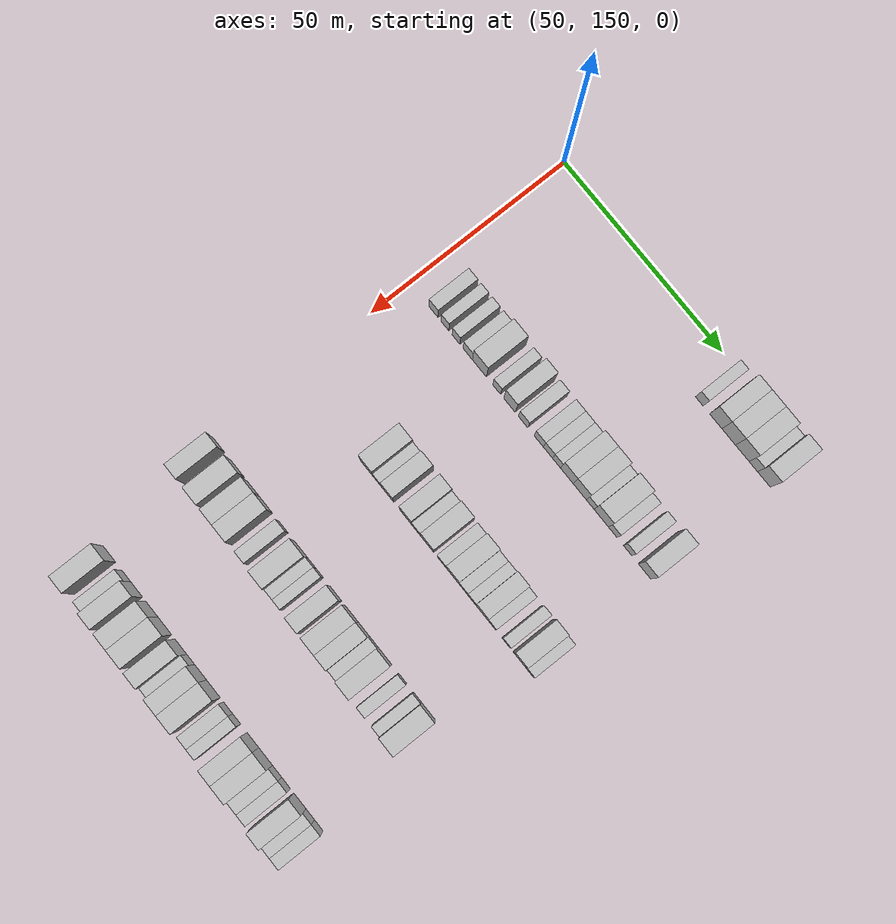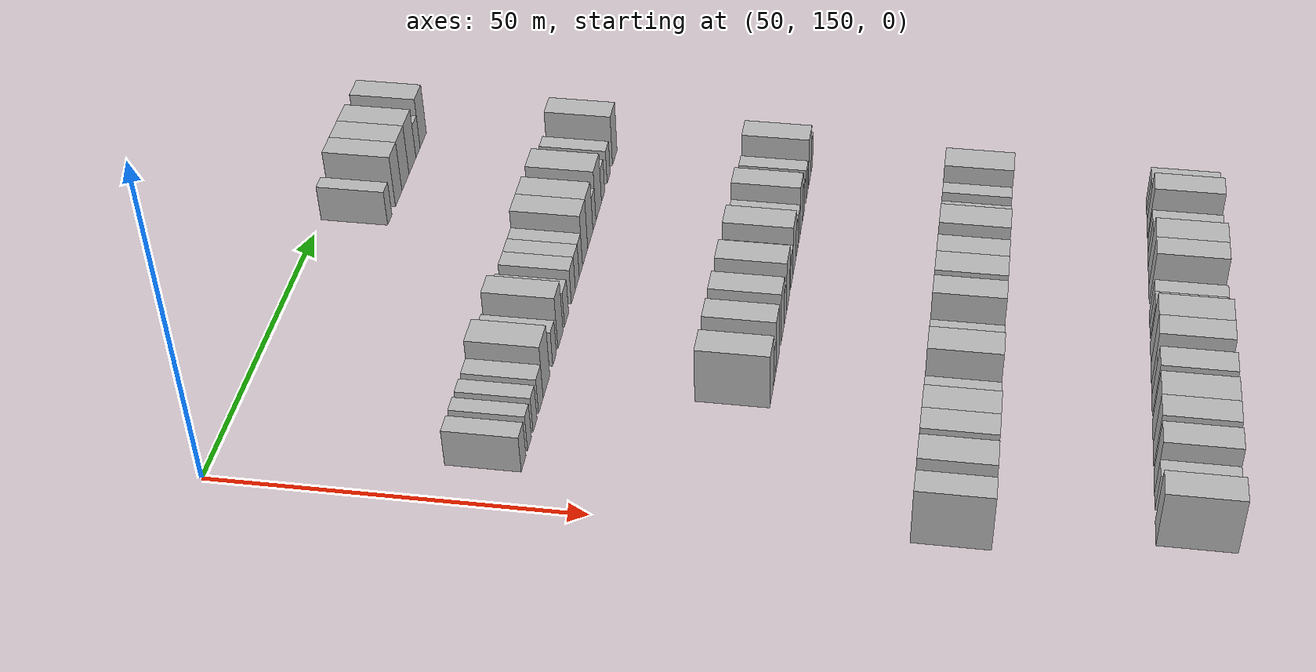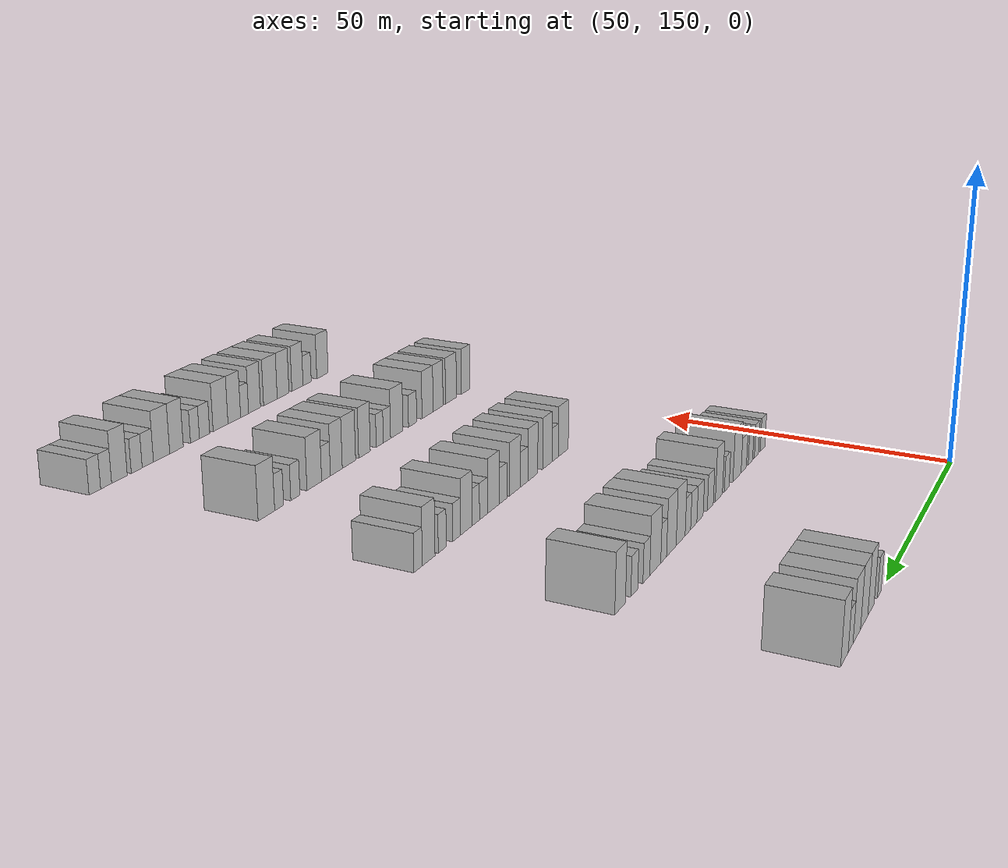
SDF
<sdf version="1.6">
 <world name="default">
  <model name="building_392">
   <static>1</static>
   <pose>55.0000 204.8235 0 0.000000 0.000000 0.000000</pose>
   <link name="link">
    <pose>0 0 3.00 0 0 0</pose>
    <collision name="collision"><geometry><box><size>10.0000 2.4169 6.0000</size></box></geometry></collision>
    <visual name="visual">
     <cast_shadows>0</cast_shadows>
     <geometry><box><size>10.0000 2.4169 6.0000</size></box></geometry>
     <material>
      <script>
       <uri>model://HANNAS_wall/materials/scripts</uri>
       <uri>model://HANNAS_wall/materials/textures</uri>
       <name>vrc/HANNAS_wall</name>
      </script>
     </material>
    </visual>
   </link>
  </model>
  <model name="building_393">
   <static>1</static>
   <pose>55.0000 209.9333 0 0.000000 0.000000 0.000000</pose>
   <link name="link">
    <pose>0 0 4.50 0 0 0</pose>
    <collision name="collision"><geometry><box><size>10.0000 3.8027 9.0000</size></box></geometry></collision>
    <visual name="visual">
     <cast_shadows>0</cast_shadows>
     <geometry><box><size>10.0000 3.8027 9.0000</size></box></geometry>
     <material>
      <script>
       <uri>model://HANNAS_wall/materials/scripts</uri>
       <uri>model://HANNAS_wall/materials/textures</uri>
       <name>vrc/HANNAS_wall</name>
      </script>
     </material>
    </visual>
   </link>
  </model>
  <model name="building_394">
   <static>1</static>
   <pose>55.0000 213.9216 0 0.000000 0.000000 0.000000</pose>
   <link name="link">
    <pose>0 0 4.50 0 0 0</pose>
    <collision name="collision"><geometry><box><size>10.0000 4.1739 9.0000</size></box></geometry></collision>
    <visual name="visual">
     <cast_shadows>0</cast_shadows>
     <geometry><box><size>10.0000 4.1739 9.0000</size></box></geometry>
     <material>
      <script>
       <uri>model://HANNAS_wall/materials/scripts</uri>
       <uri>model://HANNAS_wall/materials/textures</uri>
       <name>vrc/HANNAS_wall</name>
      </script>
     </material>
    </visual>
   </link>
  </model>
  <model name="building_395">
   <static>1</static>
   <pose>55.0000 218.1036 0 0.000000 0.000000 0.000000</pose>
   <link name="link">
    <pose>0 0 4.50 0 0 0</pose>
    <collision name="collision"><geometry><box><size>10.0000 4.1902 9.0000</size></box></geometry></collision>
    <visual name="visual">
     <cast_shadows>0</cast_shadows>
     <geometry><box><size>10.0000 4.1902 9.0000</size></box></geometry>
     <material>
      <script>
       <uri>model://HANNAS_wall/materials/scripts</uri>
       <uri>model://HANNAS_wall/materials/textures</uri>
       <name>vrc/HANNAS_wall</name>
      </script>
     </material>
    </visual>
   </link>
  </model>
  <model name="building_396">
   <static>1</static>
   <pose>55.0000 221.4926 0 0.000000 0.000000 0.000000</pose>
   <link name="link">
    <pose>0 0 3.00 0 0 0</pose>
    <collision name="collision"><geometry><box><size>10.0000 2.5878 6.0000</size></box></geometry></collision>
    <visual name="visual">
     <cast_shadows>0</cast_shadows>
     <geometry><box><size>10.0000 2.5878 6.0000</size></box></geometry>
     <material>
      <script>
       <uri>model://HANNAS_wall/materials/scripts</uri>
       <uri>model://HANNAS_wall/materials/textures</uri>
       <name>vrc/HANNAS_wall</name>
      </script>
     </material>
    </visual>
   </link>
  </model>
  <model name="building_397">
   <static>1</static>
   <pose>55.0000 224.7605 0 0.000000 0.000000 0.000000</pose>
   <link name="link">
    <pose>0 0 4.50 0 0 0</pose>
    <collision name="collision"><geometry><box><size>10.0000 3.9481 9.0000</size></box></geometry></collision>
    <visual name="visual">
     <cast_shadows>0</cast_shadows>
     <geometry><box><size>10.0000 3.9481 9.0000</size></box></geometry>
     <material>
      <script>
       <uri>model://HANNAS_wall/materials/scripts</uri>
       <uri>model://HANNAS_wall/materials/textures</uri>
       <name>vrc/HANNAS_wall</name>
      </script>
     </material>
    </visual>
   </link>
  </model>
  <model name="building_618">
   <static>1</static>
   <pose>85.0000 157.7342 0 0.000000 0.000000 0.000000</pose>
   <link name="link">
    <pose>0 0 3.00 0 0 0</pose>
    <collision name="collision"><geometry><box><size>10.0000 2.8716 6.0000</size></box></geometry></collision>
    <visual name="visual">
     <cast_shadows>0</cast_shadows>
     <geometry><box><size>10.0000 2.8716 6.0000</size></box></geometry>
     <material>
      <script>
       <uri>model://HANNAS_wall/materials/scripts</uri>
       <uri>model://HANNAS_wall/materials/textures</uri>
       <name>vrc/HANNAS_wall</name>
      </script>
     </material>
    </visual>
   </link>
  </model>
  <model name="building_619">
   <static>1</static>
   <pose>85.0000 161.3915 0 0.000000 0.000000 0.000000</pose>
   <link name="link">
    <pose>0 0 3.00 0 0 0</pose>
    <collision name="collision"><geometry><box><size>10.0000 2.4431 6.0000</size></box></geometry></collision>
    <visual name="visual">
     <cast_shadows>0</cast_shadows>
     <geometry><box><size>10.0000 2.4431 6.0000</size></box></geometry>
     <material>
      <script>
       <uri>model://HANNAS_wall/materials/scripts</uri>
       <uri>model://HANNAS_wall/materials/textures</uri>
       <name>vrc/HANNAS_wall</name>
      </script>
     </material>
    </visual>
   </link>
  </model>
  <model name="building_620">
   <static>1</static>
   <pose>85.0000 164.8804 0 0.000000 0.000000 0.000000</pose>
   <link name="link">
    <pose>0 0 3.00 0 0 0</pose>
    <collision name="collision"><geometry><box><size>10.0000 2.5348 6.0000</size></box></geometry></collision>
    <visual name="visual">
     <cast_shadows>0</cast_shadows>
     <geometry><box><size>10.0000 2.5348 6.0000</size></box></geometry>
     <material>
      <script>
       <uri>model://HANNAS_wall/materials/scripts</uri>
       <uri>model://HANNAS_wall/materials/textures</uri>
       <name>vrc/HANNAS_wall</name>
      </script>
     </material>
    </visual>
   </link>
  </model>
  <model name="building_621">
   <static>1</static>
   <pose>85.0000 168.6469 0 0.000000 0.000000 0.000000</pose>
   <link name="link">
    <pose>0 0 3.00 0 0 0</pose>
    <collision name="collision"><geometry><box><size>10.0000 2.9982 6.0000</size></box></geometry></collision>
    <visual name="visual">
     <cast_shadows>0</cast_shadows>
     <geometry><box><size>10.0000 2.9982 6.0000</size></box></geometry>
     <material>
      <script>
       <uri>model://HANNAS_wall/materials/scripts</uri>
       <uri>model://HANNAS_wall/materials/textures</uri>
       <name>vrc/HANNAS_wall</name>
      </script>
     </material>
    </visual>
   </link>
  </model>
  <model name="building_622">
   <static>1</static>
   <pose>85.0000 172.3509 0 0.000000 0.000000 0.000000</pose>
   <link name="link">
    <pose>0 0 4.50 0 0 0</pose>
    <collision name="collision"><geometry><box><size>10.0000 4.4097 9.0000</size></box></geometry></collision>
    <visual name="visual">
     <cast_shadows>0</cast_shadows>
     <geometry><box><size>10.0000 4.4097 9.0000</size></box></geometry>
     <material>
      <script>
       <uri>model://HANNAS_wall/materials/scripts</uri>
       <uri>model://HANNAS_wall/materials/textures</uri>
       <name>vrc/HANNAS_wall</name>
      </script>
     </material>
    </visual>
   </link>
  </model>
  <model name="building_623">
   <static>1</static>
   <pose>85.0000 177.8034 0 0.000000 0.000000 0.000000</pose>
   <link name="link">
    <pose>0 0 3.00 0 0 0</pose>
    <collision name="collision"><geometry><box><size>10.0000 2.4953 6.0000</size></box></geometry></collision>
    <visual name="visual">
     <cast_shadows>0</cast_shadows>
     <geometry><box><size>10.0000 2.4953 6.0000</size></box></geometry>
     <material>
      <script>
       <uri>model://HANNAS_wall/materials/scripts</uri>
       <uri>model://HANNAS_wall/materials/textures</uri>
       <name>vrc/HANNAS_wall</name>
      </script>
     </material>
    </visual>
   </link>
  </model>
  <model name="building_624">
   <static>1</static>
   <pose>85.0000 181.8624 0 0.000000 0.000000 0.000000</pose>
   <link name="link">
    <pose>0 0 4.50 0 0 0</pose>
    <collision name="collision"><geometry><box><size>10.0000 3.6227 9.0000</size></box></geometry></collision>
    <visual name="visual">
     <cast_shadows>0</cast_shadows>
     <geometry><box><size>10.0000 3.6227 9.0000</size></box></geometry>
     <material>
      <script>
       <uri>model://HANNAS_wall/materials/scripts</uri>
       <uri>model://HANNAS_wall/materials/textures</uri>
       <name>vrc/HANNAS_wall</name>
      </script>
     </material>
    </visual>
   </link>
  </model>
  <model name="building_625">
   <static>1</static>
   <pose>85.0000 186.1499 0 0.000000 0.000000 0.000000</pose>
   <link name="link">
    <pose>0 0 3.00 0 0 0</pose>
    <collision name="collision"><geometry><box><size>10.0000 2.9523 6.0000</size></box></geometry></collision>
    <visual name="visual">
     <cast_shadows>0</cast_shadows>
     <geometry><box><size>10.0000 2.9523 6.0000</size></box></geometry>
     <material>
      <script>
       <uri>model://HANNAS_wall/materials/scripts</uri>
       <uri>model://HANNAS_wall/materials/textures</uri>
       <name>vrc/HANNAS_wall</name>
      </script>
     </material>
    </visual>
   </link>
  </model>
  <model name="building_626">
   <static>1</static>
   <pose>85.0000 191.1034 0 0.000000 0.000000 0.000000</pose>
   <link name="link">
    <pose>0 0 3.00 0 0 0</pose>
    <collision name="collision"><geometry><box><size>10.0000 2.9547 6.0000</size></box></geometry></collision>
    <visual name="visual">
     <cast_shadows>0</cast_shadows>
     <geometry><box><size>10.0000 2.9547 6.0000</size></box></geometry>
     <material>
      <script>
       <uri>model://HANNAS_wall/materials/scripts</uri>
       <uri>model://HANNAS_wall/materials/textures</uri>
       <name>vrc/HANNAS_wall</name>
      </script>
     </material>
    </visual>
   </link>
  </model>
  <model name="building_627">
   <static>1</static>
   <pose>85.0000 194.0192 0 0.000000 0.000000 0.000000</pose>
   <link name="link">
    <pose>0 0 3.00 0 0 0</pose>
    <collision name="collision"><geometry><box><size>10.0000 2.8770 6.0000</size></box></geometry></collision>
    <visual name="visual">
     <cast_shadows>0</cast_shadows>
     <geometry><box><size>10.0000 2.8770 6.0000</size></box></geometry>
     <material>
      <script>
       <uri>model://HANNAS_wall/materials/scripts</uri>
       <uri>model://HANNAS_wall/materials/textures</uri>
       <name>vrc/HANNAS_wall</name>
      </script>
     </material>
    </visual>
   </link>
  </model>
  <model name="building_628">
   <static>1</static>
   <pose>85.0000 196.7021 0 0.000000 0.000000 0.000000</pose>
   <link name="link">
    <pose>0 0 3.00 0 0 0</pose>
    <collision name="collision"><geometry><box><size>10.0000 2.4886 6.0000</size></box></geometry></collision>
    <visual name="visual">
     <cast_shadows>0</cast_shadows>
     <geometry><box><size>10.0000 2.4886 6.0000</size></box></geometry>
     <material>
      <script>
       <uri>model://HANNAS_wall/materials/scripts</uri>
       <uri>model://HANNAS_wall/materials/textures</uri>
       <name>vrc/HANNAS_wall</name>
      </script>
     </material>
    </visual>
   </link>
  </model>
  <model name="building_629">
   <static>1</static>
   <pose>85.0000 199.9274 0 0.000000 0.000000 0.000000</pose>
   <link name="link">
    <pose>0 0 4.50 0 0 0</pose>
    <collision name="collision"><geometry><box><size>10.0000 3.9621 9.0000</size></box></geometry></collision>
    <visual name="visual">
     <cast_shadows>0</cast_shadows>
     <geometry><box><size>10.0000 3.9621 9.0000</size></box></geometry>
     <material>
      <script>
       <uri>model://HANNAS_wall/materials/scripts</uri>
       <uri>model://HANNAS_wall/materials/textures</uri>
       <name>vrc/HANNAS_wall</name>
      </script>
     </material>
    </visual>
   </link>
  </model>
  <model name="building_630">
   <static>1</static>
   <pose>85.0000 203.9580 0 0.000000 0.000000 0.000000</pose>
   <link name="link">
    <pose>0 0 4.50 0 0 0</pose>
    <collision name="collision"><geometry><box><size>10.0000 4.0991 9.0000</size></box></geometry></collision>
    <visual name="visual">
     <cast_shadows>0</cast_shadows>
     <geometry><box><size>10.0000 4.0991 9.0000</size></box></geometry>
     <material>
      <script>
       <uri>model://HANNAS_wall/materials/scripts</uri>
       <uri>model://HANNAS_wall/materials/textures</uri>
       <name>vrc/HANNAS_wall</name>
      </script>
     </material>
    </visual>
   </link>
  </model>
  <model name="building_631">
   <static>1</static>
   <pose>85.0000 207.2104 0 0.000000 0.000000 0.000000</pose>
   <link name="link">
    <pose>0 0 3.00 0 0 0</pose>
    <collision name="collision"><geometry><box><size>10.0000 2.4057 6.0000</size></box></geometry></collision>
    <visual name="visual">
     <cast_shadows>0</cast_shadows>
     <geometry><box><size>10.0000 2.4057 6.0000</size></box></geometry>
     <material>
      <script>
       <uri>model://HANNAS_wall/materials/scripts</uri>
       <uri>model://HANNAS_wall/materials/textures</uri>
       <name>vrc/HANNAS_wall</name>
      </script>
     </material>
    </visual>
   </link>
  </model>
  <model name="building_632">
   <static>1</static>
   <pose>85.0000 210.6419 0 0.000000 0.000000 0.000000</pose>
   <link name="link">
    <pose>0 0 4.50 0 0 0</pose>
    <collision name="collision"><geometry><box><size>10.0000 4.4574 9.0000</size></box></geometry></collision>
    <visual name="visual">
     <cast_shadows>0</cast_shadows>
     <geometry><box><size>10.0000 4.4574 9.0000</size></box></geometry>
     <material>
      <script>
       <uri>model://HANNAS_wall/materials/scripts</uri>
       <uri>model://HANNAS_wall/materials/textures</uri>
       <name>vrc/HANNAS_wall</name>
      </script>
     </material>
    </visual>
   </link>
  </model>
  <model name="building_633">
   <static>1</static>
   <pose>85.0000 214.1999 0 0.000000 0.000000 0.000000</pose>
   <link name="link">
    <pose>0 0 3.00 0 0 0</pose>
    <collision name="collision"><geometry><box><size>10.0000 2.6586 6.0000</size></box></geometry></collision>
    <visual name="visual">
     <cast_shadows>0</cast_shadows>
     <geometry><box><size>10.0000 2.6586 6.0000</size></box></geometry>
     <material>
      <script>
       <uri>model://HANNAS_wall/materials/scripts</uri>
       <uri>model://HANNAS_wall/materials/textures</uri>
       <name>vrc/HANNAS_wall</name>
      </script>
     </material>
    </visual>
   </link>
  </model>
  <model name="building_634">
   <static>1</static>
   <pose>85.0000 218.8183 0 0.000000 0.000000 0.000000</pose>
   <link name="link">
    <pose>0 0 3.00 0 0 0</pose>
    <collision name="collision"><geometry><box><size>10.0000 2.5783 6.0000</size></box></geometry></collision>
    <visual name="visual">
     <cast_shadows>0</cast_shadows>
     <geometry><box><size>10.0000 2.5783 6.0000</size></box></geometry>
     <material>
      <script>
       <uri>model://HANNAS_wall/materials/scripts</uri>
       <uri>model://HANNAS_wall/materials/textures</uri>
       <name>vrc/HANNAS_wall</name>
      </script>
     </material>
    </visual>
   </link>
  </model>
  <model name="building_635">
   <static>1</static>
   <pose>85.0000 224.0314 0 0.000000 0.000000 0.000000</pose>
   <link name="link">
    <pose>0 0 4.50 0 0 0</pose>
    <collision name="collision"><geometry><box><size>10.0000 3.8479 9.0000</size></box></geometry></collision>
    <visual name="visual">
     <cast_shadows>0</cast_shadows>
     <geometry><box><size>10.0000 3.8479 9.0000</size></box></geometry>
     <material>
      <script>
       <uri>model://HANNAS_wall/materials/scripts</uri>
       <uri>model://HANNAS_wall/materials/textures</uri>
       <name>vrc/HANNAS_wall</name>
      </script>
     </material>
    </visual>
   </link>
  </model>
  <model name="building_844">
   <static>1</static>
   <pose>115.0000 174.2689 0 0.000000 0.000000 0.000000</pose>
   <link name="link">
    <pose>0 0 4.50 0 0 0</pose>
    <collision name="collision"><geometry><box><size>10.0000 4.1962 9.0000</size></box></geometry></collision>
    <visual name="visual">
     <cast_shadows>0</cast_shadows>
     <geometry><box><size>10.0000 4.1962 9.0000</size></box></geometry>
     <material>
      <script>
       <uri>model://HANNAS_wall/materials/scripts</uri>
       <uri>model://HANNAS_wall/materials/textures</uri>
       <name>vrc/HANNAS_wall</name>
      </script>
     </material>
    </visual>
   </link>
  </model>
  <model name="building_845">
   <static>1</static>
   <pose>115.0000 177.6730 0 0.000000 0.000000 0.000000</pose>
   <link name="link">
    <pose>0 0 3.00 0 0 0</pose>
    <collision name="collision"><geometry><box><size>10.0000 2.6120 6.0000</size></box></geometry></collision>
    <visual name="visual">
     <cast_shadows>0</cast_shadows>
     <geometry><box><size>10.0000 2.6120 6.0000</size></box></geometry>
     <material>
      <script>
       <uri>model://HANNAS_wall/materials/scripts</uri>
       <uri>model://HANNAS_wall/materials/textures</uri>
       <name>vrc/HANNAS_wall</name>
      </script>
     </material>
    </visual>
   </link>
  </model>
  <model name="building_846">
   <static>1</static>
   <pose>115.0000 180.8506 0 0.000000 0.000000 0.000000</pose>
   <link name="link">
    <pose>0 0 4.50 0 0 0</pose>
    <collision name="collision"><geometry><box><size>10.0000 3.7434 9.0000</size></box></geometry></collision>
    <visual name="visual">
     <cast_shadows>0</cast_shadows>
     <geometry><box><size>10.0000 3.7434 9.0000</size></box></geometry>
     <material>
      <script>
       <uri>model://HANNAS_wall/materials/scripts</uri>
       <uri>model://HANNAS_wall/materials/textures</uri>
       <name>vrc/HANNAS_wall</name>
      </script>
     </material>
    </visual>
   </link>
  </model>
  <model name="building_847">
   <static>1</static>
   <pose>115.0000 186.6078 0 0.000000 0.000000 0.000000</pose>
   <link name="link">
    <pose>0 0 4.50 0 0 0</pose>
    <collision name="collision"><geometry><box><size>10.0000 3.7710 9.0000</size></box></geometry></collision>
    <visual name="visual">
     <cast_shadows>0</cast_shadows>
     <geometry><box><size>10.0000 3.7710 9.0000</size></box></geometry>
     <material>
      <script>
       <uri>model://HANNAS_wall/materials/scripts</uri>
       <uri>model://HANNAS_wall/materials/textures</uri>
       <name>vrc/HANNAS_wall</name>
      </script>
     </material>
    </visual>
   </link>
  </model>
  <model name="building_848">
   <static>1</static>
   <pose>115.0000 189.8974 0 0.000000 0.000000 0.000000</pose>
   <link name="link">
    <pose>0 0 3.00 0 0 0</pose>
    <collision name="collision"><geometry><box><size>10.0000 2.8082 6.0000</size></box></geometry></collision>
    <visual name="visual">
     <cast_shadows>0</cast_shadows>
     <geometry><box><size>10.0000 2.8082 6.0000</size></box></geometry>
     <material>
      <script>
       <uri>model://HANNAS_wall/materials/scripts</uri>
       <uri>model://HANNAS_wall/materials/textures</uri>
       <name>vrc/HANNAS_wall</name>
      </script>
     </material>
    </visual>
   </link>
  </model>
  <model name="building_849">
   <static>1</static>
   <pose>115.0000 193.3454 0 0.000000 0.000000 0.000000</pose>
   <link name="link">
    <pose>0 0 4.50 0 0 0</pose>
    <collision name="collision"><geometry><box><size>10.0000 4.0877 9.0000</size></box></geometry></collision>
    <visual name="visual">
     <cast_shadows>0</cast_shadows>
     <geometry><box><size>10.0000 4.0877 9.0000</size></box></geometry>
     <material>
      <script>
       <uri>model://HANNAS_wall/materials/scripts</uri>
       <uri>model://HANNAS_wall/materials/textures</uri>
       <name>vrc/HANNAS_wall</name>
      </script>
     </material>
    </visual>
   </link>
  </model>
  <model name="building_850">
   <static>1</static>
   <pose>115.0000 197.7848 0 0.000000 0.000000 0.000000</pose>
   <link name="link">
    <pose>0 0 3.00 0 0 0</pose>
    <collision name="collision"><geometry><box><size>10.0000 2.7911 6.0000</size></box></geometry></collision>
    <visual name="visual">
     <cast_shadows>0</cast_shadows>
     <geometry><box><size>10.0000 2.7911 6.0000</size></box></geometry>
     <material>
      <script>
       <uri>model://HANNAS_wall/materials/scripts</uri>
       <uri>model://HANNAS_wall/materials/textures</uri>
       <name>vrc/HANNAS_wall</name>
      </script>
     </material>
    </visual>
   </link>
  </model>
  <model name="building_851">
   <static>1</static>
   <pose>115.0000 201.1940 0 0.000000 0.000000 0.000000</pose>
   <link name="link">
    <pose>0 0 4.50 0 0 0</pose>
    <collision name="collision"><geometry><box><size>10.0000 4.0273 9.0000</size></box></geometry></collision>
    <visual name="visual">
     <cast_shadows>0</cast_shadows>
     <geometry><box><size>10.0000 4.0273 9.0000</size></box></geometry>
     <material>
      <script>
       <uri>model://HANNAS_wall/materials/scripts</uri>
       <uri>model://HANNAS_wall/materials/textures</uri>
       <name>vrc/HANNAS_wall</name>
      </script>
     </material>
    </visual>
   </link>
  </model>
  <model name="building_852">
   <static>1</static>
   <pose>115.0000 204.5625 0 0.000000 0.000000 0.000000</pose>
   <link name="link">
    <pose>0 0 3.00 0 0 0</pose>
    <collision name="collision"><geometry><box><size>10.0000 2.7097 6.0000</size></box></geometry></collision>
    <visual name="visual">
     <cast_shadows>0</cast_shadows>
     <geometry><box><size>10.0000 2.7097 6.0000</size></box></geometry>
     <material>
      <script>
       <uri>model://HANNAS_wall/materials/scripts</uri>
       <uri>model://HANNAS_wall/materials/textures</uri>
       <name>vrc/HANNAS_wall</name>
      </script>
     </material>
    </visual>
   </link>
  </model>
  <model name="building_853">
   <static>1</static>
   <pose>115.0000 207.1703 0 0.000000 0.000000 0.000000</pose>
   <link name="link">
    <pose>0 0 3.00 0 0 0</pose>
    <collision name="collision"><geometry><box><size>10.0000 2.5059 6.0000</size></box></geometry></collision>
    <visual name="visual">
     <cast_shadows>0</cast_shadows>
     <geometry><box><size>10.0000 2.5059 6.0000</size></box></geometry>
     <material>
      <script>
       <uri>model://HANNAS_wall/materials/scripts</uri>
       <uri>model://HANNAS_wall/materials/textures</uri>
       <name>vrc/HANNAS_wall</name>
      </script>
     </material>
    </visual>
   </link>
  </model>
  <model name="building_854">
   <static>1</static>
   <pose>115.0000 210.2646 0 0.000000 0.000000 0.000000</pose>
   <link name="link">
    <pose>0 0 4.50 0 0 0</pose>
    <collision name="collision"><geometry><box><size>10.0000 3.6829 9.0000</size></box></geometry></collision>
    <visual name="visual">
     <cast_shadows>0</cast_shadows>
     <geometry><box><size>10.0000 3.6829 9.0000</size></box></geometry>
     <material>
      <script>
       <uri>model://HANNAS_wall/materials/scripts</uri>
       <uri>model://HANNAS_wall/materials/textures</uri>
       <name>vrc/HANNAS_wall</name>
      </script>
     </material>
    </visual>
   </link>
  </model>
  <model name="building_855">
   <static>1</static>
   <pose>115.0000 213.3733 0 0.000000 0.000000 0.000000</pose>
   <link name="link">
    <pose>0 0 3.00 0 0 0</pose>
    <collision name="collision"><geometry><box><size>10.0000 2.5343 6.0000</size></box></geometry></collision>
    <visual name="visual">
     <cast_shadows>0</cast_shadows>
     <geometry><box><size>10.0000 2.5343 6.0000</size></box></geometry>
     <material>
      <script>
       <uri>model://HANNAS_wall/materials/scripts</uri>
       <uri>model://HANNAS_wall/materials/textures</uri>
       <name>vrc/HANNAS_wall</name>
      </script>
     </material>
    </visual>
   </link>
  </model>
  <model name="building_856">
   <static>1</static>
   <pose>115.0000 217.8636 0 0.000000 0.000000 0.000000</pose>
   <link name="link">
    <pose>0 0 3.00 0 0 0</pose>
    <collision name="collision"><geometry><box><size>10.0000 2.4465 6.0000</size></box></geometry></collision>
    <visual name="visual">
     <cast_shadows>0</cast_shadows>
     <geometry><box><size>10.0000 2.4465 6.0000</size></box></geometry>
     <material>
      <script>
       <uri>model://HANNAS_wall/materials/scripts</uri>
       <uri>model://HANNAS_wall/materials/textures</uri>
       <name>vrc/HANNAS_wall</name>
      </script>
     </material>
    </visual>
   </link>
  </model>
  <model name="building_857">
   <static>1</static>
   <pose>115.0000 221.9645 0 0.000000 0.000000 0.000000</pose>
   <link name="link">
    <pose>0 0 4.50 0 0 0</pose>
    <collision name="collision"><geometry><box><size>10.0000 3.7552 9.0000</size></box></geometry></collision>
    <visual name="visual">
     <cast_shadows>0</cast_shadows>
     <geometry><box><size>10.0000 3.7552 9.0000</size></box></geometry>
     <material>
      <script>
       <uri>model://HANNAS_wall/materials/scripts</uri>
       <uri>model://HANNAS_wall/materials/textures</uri>
       <name>vrc/HANNAS_wall</name>
      </script>
     </material>
    </visual>
   </link>
  </model>
  <model name="building_858">
   <static>1</static>
   <pose>115.0000 225.0592 0 0.000000 0.000000 0.000000</pose>
   <link name="link">
    <pose>0 0 3.00 0 0 0</pose>
    <collision name="collision"><geometry><box><size>10.0000 2.4342 6.0000</size></box></geometry></collision>
    <visual name="visual">
     <cast_shadows>0</cast_shadows>
     <geometry><box><size>10.0000 2.4342 6.0000</size></box></geometry>
     <material>
      <script>
       <uri>model://HANNAS_wall/materials/scripts</uri>
       <uri>model://HANNAS_wall/materials/textures</uri>
       <name>vrc/HANNAS_wall</name>
      </script>
     </material>
    </visual>
   </link>
  </model>
  <model name="building_1083">
   <static>1</static>
   <pose>145.0000 152.2667 0 0.000000 0.000000 0.000000</pose>
   <link name="link">
    <pose>0 0 4.50 0 0 0</pose>
    <collision name="collision"><geometry><box><size>10.0000 3.6739 9.0000</size></box></geometry></collision>
    <visual name="visual">
     <cast_shadows>0</cast_shadows>
     <geometry><box><size>10.0000 3.6739 9.0000</size></box></geometry>
     <material>
      <script>
       <uri>model://HANNAS_wall/materials/scripts</uri>
       <uri>model://HANNAS_wall/materials/textures</uri>
       <name>vrc/HANNAS_wall</name>
      </script>
     </material>
    </visual>
   </link>
  </model>
  <model name="building_1084">
   <static>1</static>
   <pose>145.0000 158.2877 0 0.000000 0.000000 0.000000</pose>
   <link name="link">
    <pose>0 0 4.50 0 0 0</pose>
    <collision name="collision"><geometry><box><size>10.0000 4.3680 9.0000</size></box></geometry></collision>
    <visual name="visual">
     <cast_shadows>0</cast_shadows>
     <geometry><box><size>10.0000 4.3680 9.0000</size></box></geometry>
     <material>
      <script>
       <uri>model://HANNAS_wall/materials/scripts</uri>
       <uri>model://HANNAS_wall/materials/textures</uri>
       <name>vrc/HANNAS_wall</name>
      </script>
     </material>
    </visual>
   </link>
  </model>
  <model name="building_1085">
   <static>1</static>
   <pose>145.0000 163.3933 0 0.000000 0.000000 0.000000</pose>
   <link name="link">
    <pose>0 0 4.50 0 0 0</pose>
    <collision name="collision"><geometry><box><size>10.0000 3.8432 9.0000</size></box></geometry></collision>
    <visual name="visual">
     <cast_shadows>0</cast_shadows>
     <geometry><box><size>10.0000 3.8432 9.0000</size></box></geometry>
     <material>
      <script>
       <uri>model://HANNAS_wall/materials/scripts</uri>
       <uri>model://HANNAS_wall/materials/textures</uri>
       <name>vrc/HANNAS_wall</name>
      </script>
     </material>
    </visual>
   </link>
  </model>
  <model name="building_1086">
   <static>1</static>
   <pose>145.0000 167.4229 0 0.000000 0.000000 0.000000</pose>
   <link name="link">
    <pose>0 0 4.50 0 0 0</pose>
    <collision name="collision"><geometry><box><size>10.0000 4.2160 9.0000</size></box></geometry></collision>
    <visual name="visual">
     <cast_shadows>0</cast_shadows>
     <geometry><box><size>10.0000 4.2160 9.0000</size></box></geometry>
     <material>
      <script>
       <uri>model://HANNAS_wall/materials/scripts</uri>
       <uri>model://HANNAS_wall/materials/textures</uri>
       <name>vrc/HANNAS_wall</name>
      </script>
     </material>
    </visual>
   </link>
  </model>
  <model name="building_1087">
   <static>1</static>
   <pose>145.0000 173.0248 0 0.000000 0.000000 0.000000</pose>
   <link name="link">
    <pose>0 0 3.00 0 0 0</pose>
    <collision name="collision"><geometry><box><size>10.0000 2.9877 6.0000</size></box></geometry></collision>
    <visual name="visual">
     <cast_shadows>0</cast_shadows>
     <geometry><box><size>10.0000 2.9877 6.0000</size></box></geometry>
     <material>
      <script>
       <uri>model://HANNAS_wall/materials/scripts</uri>
       <uri>model://HANNAS_wall/materials/textures</uri>
       <name>vrc/HANNAS_wall</name>
      </script>
     </material>
    </visual>
   </link>
  </model>
  <model name="building_1088">
   <static>1</static>
   <pose>145.0000 178.7114 0 0.000000 0.000000 0.000000</pose>
   <link name="link">
    <pose>0 0 4.50 0 0 0</pose>
    <collision name="collision"><geometry><box><size>10.0000 4.3853 9.0000</size></box></geometry></collision>
    <visual name="visual">
     <cast_shadows>0</cast_shadows>
     <geometry><box><size>10.0000 4.3853 9.0000</size></box></geometry>
     <material>
      <script>
       <uri>model://HANNAS_wall/materials/scripts</uri>
       <uri>model://HANNAS_wall/materials/textures</uri>
       <name>vrc/HANNAS_wall</name>
      </script>
     </material>
    </visual>
   </link>
  </model>
  <model name="building_1089">
   <static>1</static>
   <pose>145.0000 182.1421 0 0.000000 0.000000 0.000000</pose>
   <link name="link">
    <pose>0 0 3.00 0 0 0</pose>
    <collision name="collision"><geometry><box><size>10.0000 2.4762 6.0000</size></box></geometry></collision>
    <visual name="visual">
     <cast_shadows>0</cast_shadows>
     <geometry><box><size>10.0000 2.4762 6.0000</size></box></geometry>
     <material>
      <script>
       <uri>model://HANNAS_wall/materials/scripts</uri>
       <uri>model://HANNAS_wall/materials/textures</uri>
       <name>vrc/HANNAS_wall</name>
      </script>
     </material>
    </visual>
   </link>
  </model>
  <model name="building_1090">
   <static>1</static>
   <pose>145.0000 184.5897 0 0.000000 0.000000 0.000000</pose>
   <link name="link">
    <pose>0 0 3.00 0 0 0</pose>
    <collision name="collision"><geometry><box><size>10.0000 2.4189 6.0000</size></box></geometry></collision>
    <visual name="visual">
     <cast_shadows>0</cast_shadows>
     <geometry><box><size>10.0000 2.4189 6.0000</size></box></geometry>
     <material>
      <script>
       <uri>model://HANNAS_wall/materials/scripts</uri>
       <uri>model://HANNAS_wall/materials/textures</uri>
       <name>vrc/HANNAS_wall</name>
      </script>
     </material>
    </visual>
   </link>
  </model>
  <model name="building_1091">
   <static>1</static>
   <pose>145.0000 189.6997 0 0.000000 0.000000 0.000000</pose>
   <link name="link">
    <pose>0 0 4.50 0 0 0</pose>
    <collision name="collision"><geometry><box><size>10.0000 3.8011 9.0000</size></box></geometry></collision>
    <visual name="visual">
     <cast_shadows>0</cast_shadows>
     <geometry><box><size>10.0000 3.8011 9.0000</size></box></geometry>
     <material>
      <script>
       <uri>model://HANNAS_wall/materials/scripts</uri>
       <uri>model://HANNAS_wall/materials/textures</uri>
       <name>vrc/HANNAS_wall</name>
      </script>
     </material>
    </visual>
   </link>
  </model>
  <model name="building_1092">
   <static>1</static>
   <pose>145.0000 194.7062 0 0.000000 0.000000 0.000000</pose>
   <link name="link">
    <pose>0 0 4.50 0 0 0</pose>
    <collision name="collision"><geometry><box><size>10.0000 4.2119 9.0000</size></box></geometry></collision>
    <visual name="visual">
     <cast_shadows>0</cast_shadows>
     <geometry><box><size>10.0000 4.2119 9.0000</size></box></geometry>
     <material>
      <script>
       <uri>model://HANNAS_wall/materials/scripts</uri>
       <uri>model://HANNAS_wall/materials/textures</uri>
       <name>vrc/HANNAS_wall</name>
      </script>
     </material>
    </visual>
   </link>
  </model>
  <model name="building_1093">
   <static>1</static>
   <pose>145.0000 198.6366 0 0.000000 0.000000 0.000000</pose>
   <link name="link">
    <pose>0 0 4.50 0 0 0</pose>
    <collision name="collision"><geometry><box><size>10.0000 3.6488 9.0000</size></box></geometry></collision>
    <visual name="visual">
     <cast_shadows>0</cast_shadows>
     <geometry><box><size>10.0000 3.6488 9.0000</size></box></geometry>
     <material>
      <script>
       <uri>model://HANNAS_wall/materials/scripts</uri>
       <uri>model://HANNAS_wall/materials/textures</uri>
       <name>vrc/HANNAS_wall</name>
      </script>
     </material>
    </visual>
   </link>
  </model>
  <model name="building_1094">
   <static>1</static>
   <pose>145.0000 201.7833 0 0.000000 0.000000 0.000000</pose>
   <link name="link">
    <pose>0 0 3.00 0 0 0</pose>
    <collision name="collision"><geometry><box><size>10.0000 2.6446 6.0000</size></box></geometry></collision>
    <visual name="visual">
     <cast_shadows>0</cast_shadows>
     <geometry><box><size>10.0000 2.6446 6.0000</size></box></geometry>
     <material>
      <script>
       <uri>model://HANNAS_wall/materials/scripts</uri>
       <uri>model://HANNAS_wall/materials/textures</uri>
       <name>vrc/HANNAS_wall</name>
      </script>
     </material>
    </visual>
   </link>
  </model>
  <model name="building_1095">
   <static>1</static>
   <pose>145.0000 205.2643 0 0.000000 0.000000 0.000000</pose>
   <link name="link">
    <pose>0 0 4.50 0 0 0</pose>
    <collision name="collision"><geometry><box><size>10.0000 4.3175 9.0000</size></box></geometry></collision>
    <visual name="visual">
     <cast_shadows>0</cast_shadows>
     <geometry><box><size>10.0000 4.3175 9.0000</size></box></geometry>
     <material>
      <script>
       <uri>model://HANNAS_wall/materials/scripts</uri>
       <uri>model://HANNAS_wall/materials/textures</uri>
       <name>vrc/HANNAS_wall</name>
      </script>
     </material>
    </visual>
   </link>
  </model>
  <model name="building_1096">
   <static>1</static>
   <pose>145.0000 210.7127 0 0.000000 0.000000 0.000000</pose>
   <link name="link">
    <pose>0 0 3.00 0 0 0</pose>
    <collision name="collision"><geometry><box><size>10.0000 2.5794 6.0000</size></box></geometry></collision>
    <visual name="visual">
     <cast_shadows>0</cast_shadows>
     <geometry><box><size>10.0000 2.5794 6.0000</size></box></geometry>
     <material>
      <script>
       <uri>model://HANNAS_wall/materials/scripts</uri>
       <uri>model://HANNAS_wall/materials/textures</uri>
       <name>vrc/HANNAS_wall</name>
      </script>
     </material>
    </visual>
   </link>
  </model>
  <model name="building_1097">
   <static>1</static>
   <pose>145.0000 215.2213 0 0.000000 0.000000 0.000000</pose>
   <link name="link">
    <pose>0 0 3.00 0 0 0</pose>
    <collision name="collision"><geometry><box><size>10.0000 2.4377 6.0000</size></box></geometry></collision>
    <visual name="visual">
     <cast_shadows>0</cast_shadows>
     <geometry><box><size>10.0000 2.4377 6.0000</size></box></geometry>
     <material>
      <script>
       <uri>model://HANNAS_wall/materials/scripts</uri>
       <uri>model://HANNAS_wall/materials/textures</uri>
       <name>vrc/HANNAS_wall</name>
      </script>
     </material>
    </visual>
   </link>
  </model>
  <model name="building_1098">
   <static>1</static>
   <pose>145.0000 218.6371 0 0.000000 0.000000 0.000000</pose>
   <link name="link">
    <pose>0 0 4.50 0 0 0</pose>
    <collision name="collision"><geometry><box><size>10.0000 4.3939 9.0000</size></box></geometry></collision>
    <visual name="visual">
     <cast_shadows>0</cast_shadows>
     <geometry><box><size>10.0000 4.3939 9.0000</size></box></geometry>
     <material>
      <script>
       <uri>model://HANNAS_wall/materials/scripts</uri>
       <uri>model://HANNAS_wall/materials/textures</uri>
       <name>vrc/HANNAS_wall</name>
      </script>
     </material>
    </visual>
   </link>
  </model>
  <model name="building_1310">
   <static>1</static>
   <pose>175.0000 155.8627 0 0.000000 0.000000 0.000000</pose>
   <link name="link">
    <pose>0 0 4.50 0 0 0</pose>
    <collision name="collision"><geometry><box><size>10.0000 4.1224 9.0000</size></box></geometry></collision>
    <visual name="visual">
     <cast_shadows>0</cast_shadows>
     <geometry><box><size>10.0000 4.1224 9.0000</size></box></geometry>
     <material>
      <script>
       <uri>model://HANNAS_wall/materials/scripts</uri>
       <uri>model://HANNAS_wall/materials/textures</uri>
       <name>vrc/HANNAS_wall</name>
      </script>
     </material>
    </visual>
   </link>
  </model>
  <model name="building_1311">
   <static>1</static>
   <pose>175.0000 161.3674 0 0.000000 0.000000 0.000000</pose>
   <link name="link">
    <pose>0 0 3.00 0 0 0</pose>
    <collision name="collision"><geometry><box><size>10.0000 2.8870 6.0000</size></box></geometry></collision>
    <visual name="visual">
     <cast_shadows>0</cast_shadows>
     <geometry><box><size>10.0000 2.8870 6.0000</size></box></geometry>
     <material>
      <script>
       <uri>model://HANNAS_wall/materials/scripts</uri>
       <uri>model://HANNAS_wall/materials/textures</uri>
       <name>vrc/HANNAS_wall</name>
      </script>
     </material>
    </visual>
   </link>
  </model>
  <model name="building_1312">
   <static>1</static>
   <pose>175.0000 164.7417 0 0.000000 0.000000 0.000000</pose>
   <link name="link">
    <pose>0 0 4.50 0 0 0</pose>
    <collision name="collision"><geometry><box><size>10.0000 3.8617 9.0000</size></box></geometry></collision>
    <visual name="visual">
     <cast_shadows>0</cast_shadows>
     <geometry><box><size>10.0000 3.8617 9.0000</size></box></geometry>
     <material>
      <script>
       <uri>model://HANNAS_wall/materials/scripts</uri>
       <uri>model://HANNAS_wall/materials/textures</uri>
       <name>vrc/HANNAS_wall</name>
      </script>
     </material>
    </visual>
   </link>
  </model>
  <model name="building_1313">
   <static>1</static>
   <pose>175.0000 169.6407 0 0.000000 0.000000 0.000000</pose>
   <link name="link">
    <pose>0 0 4.50 0 0 0</pose>
    <collision name="collision"><geometry><box><size>10.0000 3.9362 9.0000</size></box></geometry></collision>
    <visual name="visual">
     <cast_shadows>0</cast_shadows>
     <geometry><box><size>10.0000 3.9362 9.0000</size></box></geometry>
     <material>
      <script>
       <uri>model://HANNAS_wall/materials/scripts</uri>
       <uri>model://HANNAS_wall/materials/textures</uri>
       <name>vrc/HANNAS_wall</name>
      </script>
     </material>
    </visual>
   </link>
  </model>
  <model name="building_1314">
   <static>1</static>
   <pose>175.0000 173.8416 0 0.000000 0.000000 0.000000</pose>
   <link name="link">
    <pose>0 0 4.50 0 0 0</pose>
    <collision name="collision"><geometry><box><size>10.0000 4.4656 9.0000</size></box></geometry></collision>
    <visual name="visual">
     <cast_shadows>0</cast_shadows>
     <geometry><box><size>10.0000 4.4656 9.0000</size></box></geometry>
     <material>
      <script>
       <uri>model://HANNAS_wall/materials/scripts</uri>
       <uri>model://HANNAS_wall/materials/textures</uri>
       <name>vrc/HANNAS_wall</name>
      </script>
     </material>
    </visual>
   </link>
  </model>
  <model name="building_1315">
   <static>1</static>
   <pose>175.0000 178.9579 0 0.000000 0.000000 0.000000</pose>
   <link name="link">
    <pose>0 0 4.50 0 0 0</pose>
    <collision name="collision"><geometry><box><size>10.0000 3.7670 9.0000</size></box></geometry></collision>
    <visual name="visual">
     <cast_shadows>0</cast_shadows>
     <geometry><box><size>10.0000 3.7670 9.0000</size></box></geometry>
     <material>
      <script>
       <uri>model://HANNAS_wall/materials/scripts</uri>
       <uri>model://HANNAS_wall/materials/textures</uri>
       <name>vrc/HANNAS_wall</name>
      </script>
     </material>
    </visual>
   </link>
  </model>
  <model name="building_1316">
   <static>1</static>
   <pose>175.0000 182.0832 0 0.000000 0.000000 0.000000</pose>
   <link name="link">
    <pose>0 0 3.00 0 0 0</pose>
    <collision name="collision"><geometry><box><size>10.0000 2.4836 6.0000</size></box></geometry></collision>
    <visual name="visual">
     <cast_shadows>0</cast_shadows>
     <geometry><box><size>10.0000 2.4836 6.0000</size></box></geometry>
     <material>
      <script>
       <uri>model://HANNAS_wall/materials/scripts</uri>
       <uri>model://HANNAS_wall/materials/textures</uri>
       <name>vrc/HANNAS_wall</name>
      </script>
     </material>
    </visual>
   </link>
  </model>
  <model name="building_1317">
   <static>1</static>
   <pose>175.0000 185.2493 0 0.000000 0.000000 0.000000</pose>
   <link name="link">
    <pose>0 0 4.50 0 0 0</pose>
    <collision name="collision"><geometry><box><size>10.0000 3.8485 9.0000</size></box></geometry></collision>
    <visual name="visual">
     <cast_shadows>0</cast_shadows>
     <geometry><box><size>10.0000 3.8485 9.0000</size></box></geometry>
     <material>
      <script>
       <uri>model://HANNAS_wall/materials/scripts</uri>
       <uri>model://HANNAS_wall/materials/textures</uri>
       <name>vrc/HANNAS_wall</name>
      </script>
     </material>
    </visual>
   </link>
  </model>
  <model name="building_1318">
   <static>1</static>
   <pose>175.0000 189.3740 0 0.000000 0.000000 0.000000</pose>
   <link name="link">
    <pose>0 0 4.50 0 0 0</pose>
    <collision name="collision"><geometry><box><size>10.0000 4.4009 9.0000</size></box></geometry></collision>
    <visual name="visual">
     <cast_shadows>0</cast_shadows>
     <geometry><box><size>10.0000 4.4009 9.0000</size></box></geometry>
     <material>
      <script>
       <uri>model://HANNAS_wall/materials/scripts</uri>
       <uri>model://HANNAS_wall/materials/textures</uri>
       <name>vrc/HANNAS_wall</name>
      </script>
     </material>
    </visual>
   </link>
  </model>
  <model name="building_1319">
   <static>1</static>
   <pose>175.0000 194.0550 0 0.000000 0.000000 0.000000</pose>
   <link name="link">
    <pose>0 0 3.00 0 0 0</pose>
    <collision name="collision"><geometry><box><size>10.0000 2.9611 6.0000</size></box></geometry></collision>
    <visual name="visual">
     <cast_shadows>0</cast_shadows>
     <geometry><box><size>10.0000 2.9611 6.0000</size></box></geometry>
     <material>
      <script>
       <uri>model://HANNAS_wall/materials/scripts</uri>
       <uri>model://HANNAS_wall/materials/textures</uri>
       <name>vrc/HANNAS_wall</name>
      </script>
     </material>
    </visual>
   </link>
  </model>
  <model name="building_1320">
   <static>1</static>
   <pose>175.0000 196.7937 0 0.000000 0.000000 0.000000</pose>
   <link name="link">
    <pose>0 0 3.00 0 0 0</pose>
    <collision name="collision"><geometry><box><size>10.0000 2.5163 6.0000</size></box></geometry></collision>
    <visual name="visual">
     <cast_shadows>0</cast_shadows>
     <geometry><box><size>10.0000 2.5163 6.0000</size></box></geometry>
     <material>
      <script>
       <uri>model://HANNAS_wall/materials/scripts</uri>
       <uri>model://HANNAS_wall/materials/textures</uri>
       <name>vrc/HANNAS_wall</name>
      </script>
     </material>
    </visual>
   </link>
  </model>
  <model name="building_1321">
   <static>1</static>
   <pose>175.0000 201.9031 0 0.000000 0.000000 0.000000</pose>
   <link name="link">
    <pose>0 0 4.50 0 0 0</pose>
    <collision name="collision"><geometry><box><size>10.0000 3.7025 9.0000</size></box></geometry></collision>
    <visual name="visual">
     <cast_shadows>0</cast_shadows>
     <geometry><box><size>10.0000 3.7025 9.0000</size></box></geometry>
     <material>
      <script>
       <uri>model://HANNAS_wall/materials/scripts</uri>
       <uri>model://HANNAS_wall/materials/textures</uri>
       <name>vrc/HANNAS_wall</name>
      </script>
     </material>
    </visual>
   </link>
  </model>
  <model name="building_1322">
   <static>1</static>
   <pose>175.0000 205.9078 0 0.000000 0.000000 0.000000</pose>
   <link name="link">
    <pose>0 0 4.50 0 0 0</pose>
    <collision name="collision"><geometry><box><size>10.0000 4.3071 9.0000</size></box></geometry></collision>
    <visual name="visual">
     <cast_shadows>0</cast_shadows>
     <geometry><box><size>10.0000 4.3071 9.0000</size></box></geometry>
     <material>
      <script>
       <uri>model://HANNAS_wall/materials/scripts</uri>
       <uri>model://HANNAS_wall/materials/textures</uri>
       <name>vrc/HANNAS_wall</name>
      </script>
     </material>
    </visual>
   </link>
  </model>
  <model name="building_1323">
   <static>1</static>
   <pose>175.0000 209.5201 0 0.000000 0.000000 0.000000</pose>
   <link name="link">
    <pose>0 0 3.00 0 0 0</pose>
    <collision name="collision"><geometry><box><size>10.0000 2.9174 6.0000</size></box></geometry></collision>
    <visual name="visual">
     <cast_shadows>0</cast_shadows>
     <geometry><box><size>10.0000 2.9174 6.0000</size></box></geometry>
     <material>
      <script>
       <uri>model://HANNAS_wall/materials/scripts</uri>
       <uri>model://HANNAS_wall/materials/textures</uri>
       <name>vrc/HANNAS_wall</name>
      </script>
     </material>
    </visual>
   </link>
  </model>
  <model name="building_1324">
   <static>1</static>
   <pose>175.0000 212.3597 0 0.000000 0.000000 0.000000</pose>
   <link name="link">
    <pose>0 0 3.00 0 0 0</pose>
    <collision name="collision"><geometry><box><size>10.0000 2.7618 6.0000</size></box></geometry></collision>
    <visual name="visual">
     <cast_shadows>0</cast_shadows>
     <geometry><box><size>10.0000 2.7618 6.0000</size></box></geometry>
     <material>
      <script>
       <uri>model://HANNAS_wall/materials/scripts</uri>
       <uri>model://HANNAS_wall/materials/textures</uri>
       <name>vrc/HANNAS_wall</name>
      </script>
     </material>
    </visual>
   </link>
  </model>
  <model name="building_1325">
   <static>1</static>
   <pose>175.0000 216.6643 0 0.000000 0.000000 0.000000</pose>
   <link name="link">
    <pose>0 0 4.50 0 0 0</pose>
    <collision name="collision"><geometry><box><size>10.0000 3.8473 9.0000</size></box></geometry></collision>
    <visual name="visual">
     <cast_shadows>0</cast_shadows>
     <geometry><box><size>10.0000 3.8473 9.0000</size></box></geometry>
     <material>
      <script>
       <uri>model://HANNAS_wall/materials/scripts</uri>
       <uri>model://HANNAS_wall/materials/textures</uri>
       <name>vrc/HANNAS_wall</name>
      </script>
     </material>
    </visual>
   </link>
  </model>
  <model name="building_1326">
   <static>1</static>
   <pose>175.0000 219.9033 0 0.000000 0.000000 0.000000</pose>
   <link name="link">
    <pose>0 0 3.00 0 0 0</pose>
    <collision name="collision"><geometry><box><size>10.0000 2.6307 6.0000</size></box></geometry></collision>
    <visual name="visual">
     <cast_shadows>0</cast_shadows>
     <geometry><box><size>10.0000 2.6307 6.0000</size></box></geometry>
     <material>
      <script>
       <uri>model://HANNAS_wall/materials/scripts</uri>
       <uri>model://HANNAS_wall/materials/textures</uri>
       <name>vrc/HANNAS_wall</name>
      </script>
     </material>
    </visual>
   </link>
  </model>
  <model name="building_1327">
   <static>1</static>
   <pose>175.0000 222.5875 0 0.000000 0.000000 0.000000</pose>
   <link name="link">
    <pose>0 0 3.00 0 0 0</pose>
    <collision name="collision"><geometry><box><size>10.0000 2.7377 6.0000</size></box></geometry></collision>
    <visual name="visual">
     <cast_shadows>0</cast_shadows>
     <geometry><box><size>10.0000 2.7377 6.0000</size></box></geometry>
     <material>
      <script>
       <uri>model://HANNAS_wall/materials/scripts</uri>
       <uri>model://HANNAS_wall/materials/textures</uri>
       <name>vrc/HANNAS_wall</name>
      </script>
     </material>
    </visual>
   </link>
  </model>
 </world>
</sdf>
